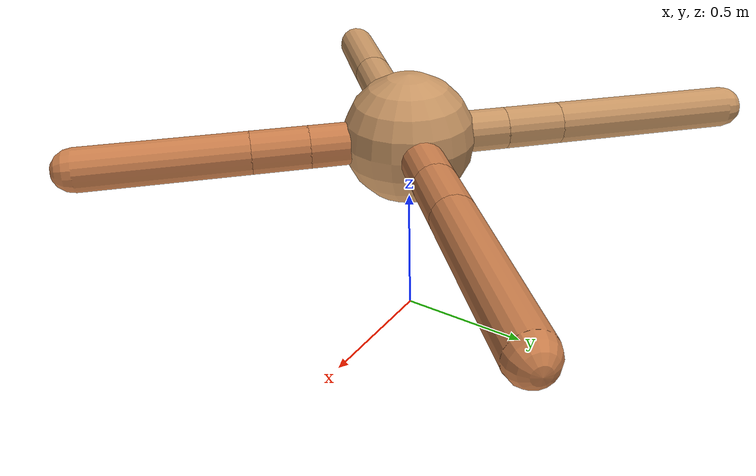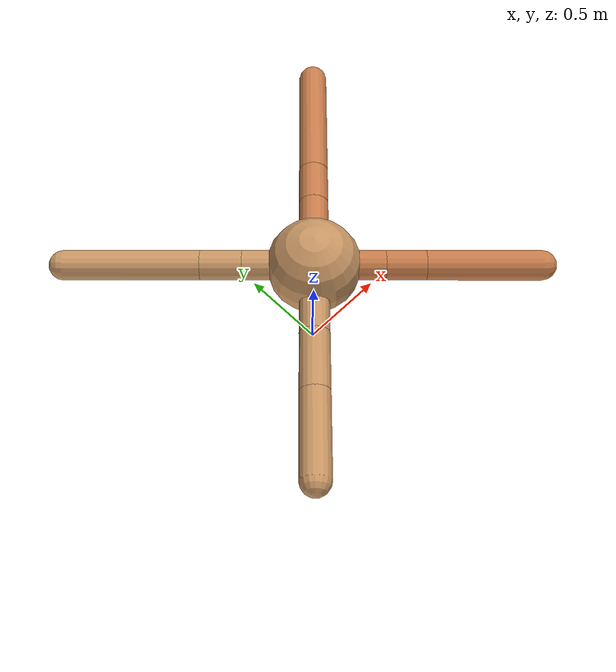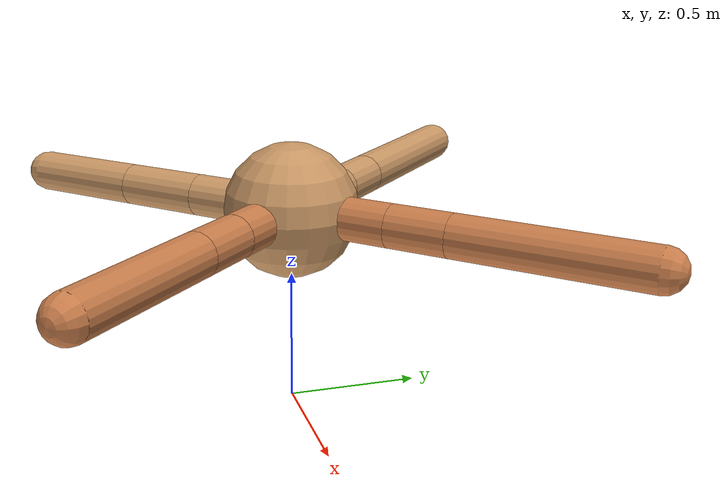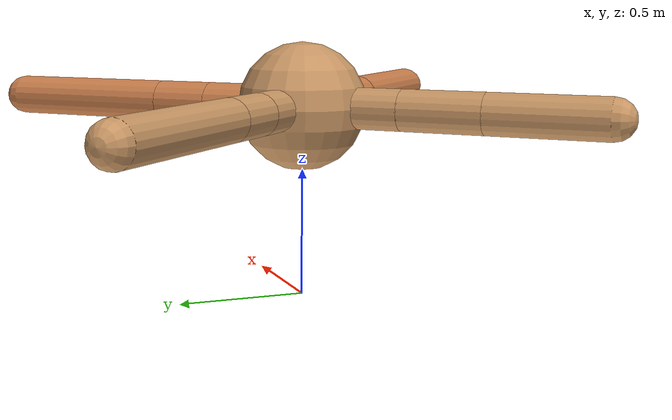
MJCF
<mujoco model="ant">
  <compiler angle="degree" coordinate="local" inertiafromgeom="true" />
  <option integrator="RK4" timestep="0.01" />
  <custom>
    <numeric data="0.0 0.0 0.55 1.0 0.0 0.0 0.0 0.0 1.0 0.0 -1.0 0.0 -1.0 0.0 1.0" name="init_qpos" />
  </custom>
  <default>
    <joint armature="1" damping="1" limited="true" />
    <geom conaffinity="0" condim="3" density="5.0" friction="1.5 0.1 0.1" margin="0.01" rgba="0.8 0.6 0.4 1" />
  </default>
  <worldbody>
    <body name="torso" pos="0 0 0.75">
      <geom name="torso_geom" pos="0 0 0" size="0.25" type="sphere" />

      <body name="front_left_leg" pos="0 0 0">
        <geom fromto="0.0 0.0 0.0 0.28573649523795236 0.28573649523795236 0.0" name="aux_1_geom" size="0.08" type="capsule" rgba=".8 .5 .3 1" />
        <body name="aux_1" pos="0.28573649523795236 0.28573649523795236 0.0">
          <joint axis="0 0 1" name="hip_1" pos="0.0 0.0 0.0" range="-40 40" type="hinge" />
          <geom fromto="0.0 0.0 0.0 0.15951488327511298 0.15951488327511298 0.0" name="left_leg_geom" size="0.08" type="capsule" rgba=".8 .5 .3 1" />
          <body pos="0.15951488327511298 0.15951488327511298 0.0" name="front_left_foot">
            <joint axis="-1 1 0" name="ankle_1" pos="0.0 0.0 0.0" range="30 100" type="hinge" />
            <geom fromto="0.0 0.0 0.0 0.4906913844309768 0.4906913844309768 0.0" name="left_ankle_geom" size="0.08" type="capsule" rgba=".8 .5 .3 1" />
          </body>
        </body>
      </body>
      <body name="front_right_leg" pos="0 0 0">
        <geom fromto="0.0 0.0 0.0 -0.26725150812033177 0.26725150812033177 0.0" name="aux_2_geom" size="0.08" type="capsule" />
        <body name="aux_2" pos="-0.26725150812033177 0.26725150812033177 0.0">
          <joint axis="0 0 1" name="hip_2" pos="0.0 0.0 0.0" range="-40 40" type="hinge" />
          <geom fromto="0.0 0.0 0.0 -0.15510032940242685 0.15510032940242685 0.0" name="right_leg_geom" size="0.08" type="capsule" />
          <body pos="-0.15510032940242685 0.15510032940242685 0.0" name="front_right_foot">
            <joint axis="1 1 0" name="ankle_2" pos="0.0 0.0 0.0" range="-100 -30" type="hinge" />
            <geom fromto="0.0 0.0 0.0 -0.5046090543810294 0.5046090543810294 0.0" name="right_ankle_geom" size="0.08" type="capsule" />
          </body>
        </body>
      </body>
      <body name="left_back_leg" pos="0 0 0">
        <geom fromto="0.0 0.0 0.0 -0.2883617340405894 -0.2883617340405894 0.0" name="aux_3_geom" size="0.08" type="capsule" />
        <body name="aux_3" pos="-0.2883617340405894 -0.2883617340405894 0.0">
          <joint axis="0 0 1" name="hip_3" pos="0.0 0.0 0.0" range="-40 40" type="hinge" />
          <geom fromto="0.0 0.0 0.0 -0.2270329314587931 -0.2270329314587931 0.0" name="back_leg_geom" size="0.08" type="capsule" />
          <body pos="-0.2270329314587931 -0.2270329314587931 0.0" name="left_back_foot">
            <joint axis="-1 1 0" name="ankle_3" pos="0.0 0.0 0.0" range="-100 -30" type="hinge" />
            <geom fromto="0.0 0.0 0.0 -0.32056265780568083 -0.32056265780568083 0.0" name="third_ankle_geom" size="0.08" type="capsule" />
          </body>
        </body>
      </body>
      <body name="right_back_leg" pos="0 0 0">
        <geom fromto="0.0 0.0 0.0 0.26556665326841183 -0.26556665326841183 0.0" name="aux_4_geom" size="0.08" type="capsule" rgba=".8 .5 .3 1" />
        <body name="aux_4" pos="0.26556665326841183 -0.26556665326841183 0.0">
          <joint axis="0 0 1" name="hip_4" pos="0.0 0.0 0.0" range="-40 40" type="hinge" />
          <geom fromto="0.0 0.0 0.0 0.15003913351409015 -0.15003913351409015 0.0" name="rightback_leg_geom" size="0.08" type="capsule" rgba=".8 .5 .3 1" />
          <body pos="0.15003913351409015 -0.15003913351409015 0.0" name="right_back_foot">
            <joint axis="1 1 0" name="ankle_4" pos="0.0 0.0 0.0" range="30 100" type="hinge" />
            <geom fromto="0.0 0.0 0.0 0.42786763818435536 -0.42786763818435536 0.0" name="fourth_ankle_geom" size="0.08" type="capsule" rgba=".8 .5 .3 1" />
          </body>
        </body>
      </body>
    </body>
  </worldbody>
  <actuator>
    <motor ctrllimited="true" ctrlrange="-1.0 1.0" joint="hip_4" gear="150" />
    <motor ctrllimited="true" ctrlrange="-1.0 1.0" joint="ankle_4" gear="150" />
    <motor ctrllimited="true" ctrlrange="-1.0 1.0" joint="hip_1" gear="150" />
    <motor ctrllimited="true" ctrlrange="-1.0 1.0" joint="ankle_1" gear="150" />
    <motor ctrllimited="true" ctrlrange="-1.0 1.0" joint="hip_2" gear="150" />
    <motor ctrllimited="true" ctrlrange="-1.0 1.0" joint="ankle_2" gear="150" />
    <motor ctrllimited="true" ctrlrange="-1.0 1.0" joint="hip_3" gear="150" />
    <motor ctrllimited="true" ctrlrange="-1.0 1.0" joint="ankle_3" gear="150" />
  </actuator>
</mujoco>
